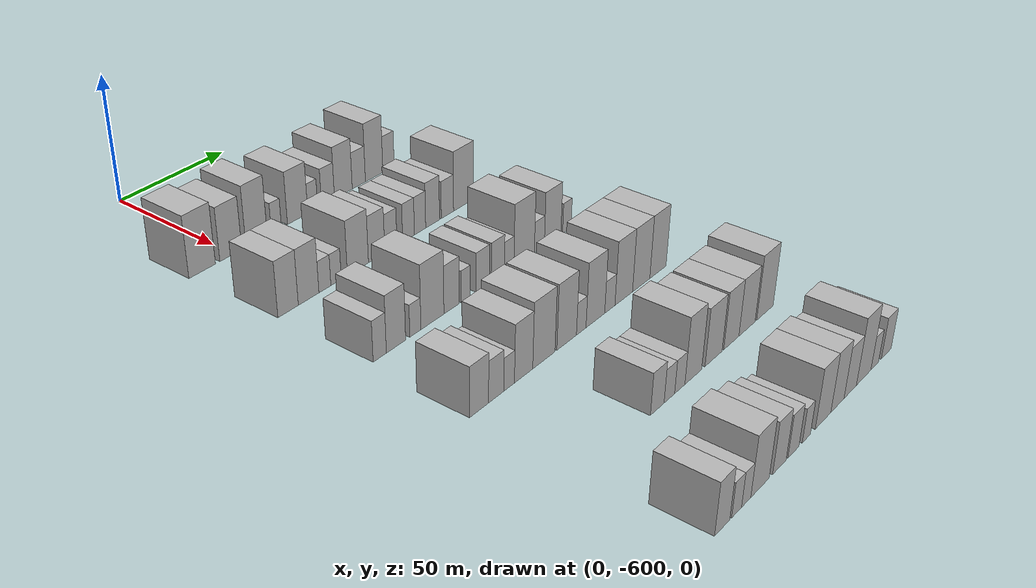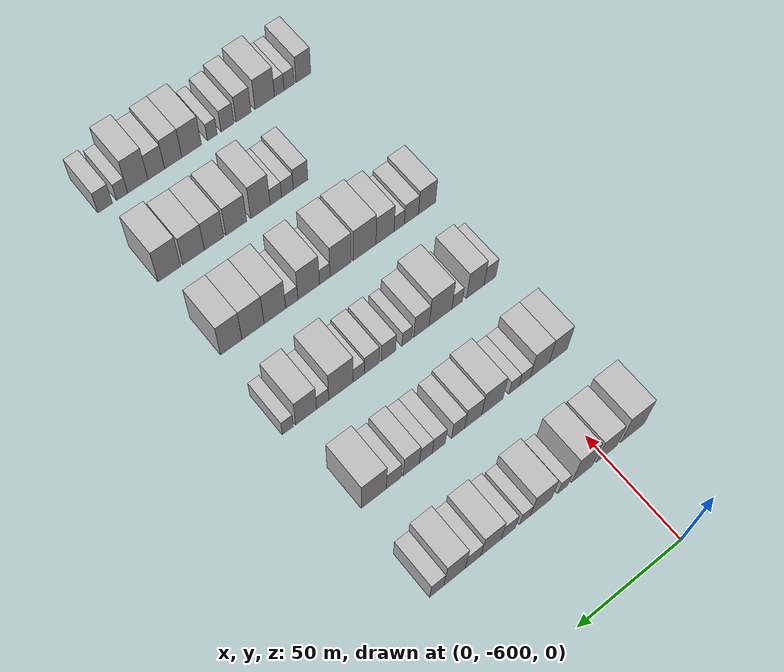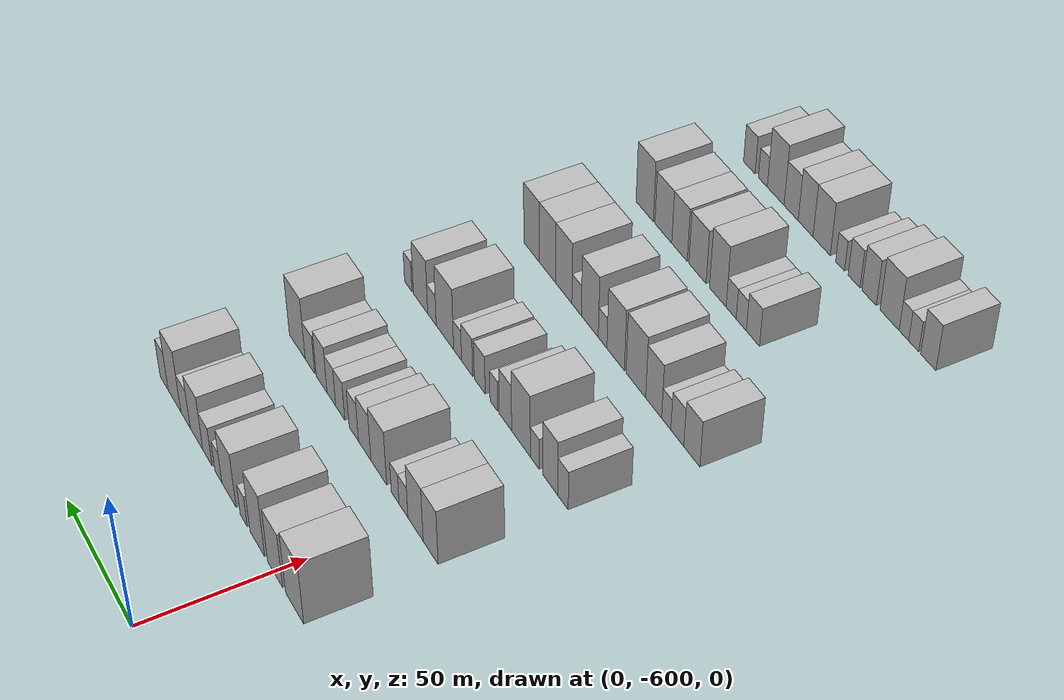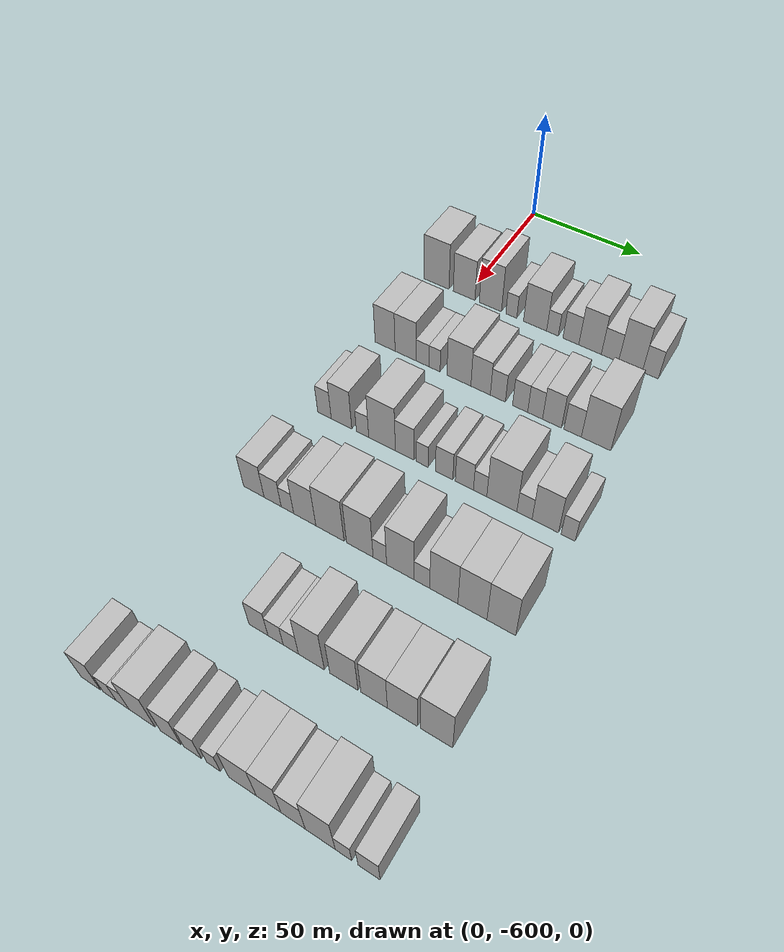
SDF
<sdf version="1.6">
 <world name="default">
  <model name="building_1">
   <static>1</static>
   <pose>50.0000 -614.0647 0 0.000000 0.000000 0.000000</pose>
   <link name="link">
    <pose>0 0 12.00 0 0 0</pose>
    <collision name="collision"><geometry><box><size>20.0000 11.8707 24.0000</size></box></geometry></collision>
    <visual name="visual">
     <cast_shadows>0</cast_shadows>
     <geometry><box><size>20.0000 11.8707 24.0000</size></box></geometry>
     <material>
      <script>
       <uri>model://HANNAS_wall/materials/scripts</uri>
       <uri>model://HANNAS_wall/materials/textures</uri>
       <name>vrc/HANNAS_wall</name>
      </script>
     </material>
    </visual>
   </link>
  </model>
  <model name="building_2">
   <static>1</static>
   <pose>50.0000 -601.0607 0 0.000000 0.000000 0.000000</pose>
   <link name="link">
    <pose>0 0 10.50 0 0 0</pose>
    <collision name="collision"><geometry><box><size>20.0000 10.1372 21.0000</size></box></geometry></collision>
    <visual name="visual">
     <cast_shadows>0</cast_shadows>
     <geometry><box><size>20.0000 10.1372 21.0000</size></box></geometry>
     <material>
      <script>
       <uri>model://HANNAS_wall/materials/scripts</uri>
       <uri>model://HANNAS_wall/materials/textures</uri>
       <name>vrc/HANNAS_wall</name>
      </script>
     </material>
    </visual>
   </link>
  </model>
  <model name="building_3">
   <static>1</static>
   <pose>50.0000 -588.9129 0 0.000000 0.000000 0.000000</pose>
   <link name="link">
    <pose>0 0 12.00 0 0 0</pose>
    <collision name="collision"><geometry><box><size>20.0000 10.1585 24.0000</size></box></geometry></collision>
    <visual name="visual">
     <cast_shadows>0</cast_shadows>
     <geometry><box><size>20.0000 10.1585 24.0000</size></box></geometry>
     <material>
      <script>
       <uri>model://HANNAS_wall/materials/scripts</uri>
       <uri>model://HANNAS_wall/materials/textures</uri>
       <name>vrc/HANNAS_wall</name>
      </script>
     </material>
    </visual>
   </link>
  </model>
  <model name="building_4">
   <static>1</static>
   <pose>50.0000 -579.3778 0 0.000000 0.000000 0.000000</pose>
   <link name="link">
    <pose>0 0 6.00 0 0 0</pose>
    <collision name="collision"><geometry><box><size>20.0000 4.9117 12.0000</size></box></geometry></collision>
    <visual name="visual">
     <cast_shadows>0</cast_shadows>
     <geometry><box><size>20.0000 4.9117 12.0000</size></box></geometry>
     <material>
      <script>
       <uri>model://HANNAS_wall/materials/scripts</uri>
       <uri>model://HANNAS_wall/materials/textures</uri>
       <name>vrc/HANNAS_wall</name>
      </script>
     </material>
    </visual>
   </link>
  </model>
  <model name="building_5">
   <static>1</static>
   <pose>50.0000 -568.7903 0 0.000000 0.000000 0.000000</pose>
   <link name="link">
    <pose>0 0 10.50 0 0 0</pose>
    <collision name="collision"><geometry><box><size>20.0000 10.2632 21.0000</size></box></geometry></collision>
    <visual name="visual">
     <cast_shadows>0</cast_shadows>
     <geometry><box><size>20.0000 10.2632 21.0000</size></box></geometry>
     <material>
      <script>
       <uri>model://HANNAS_wall/materials/scripts</uri>
       <uri>model://HANNAS_wall/materials/textures</uri>
       <name>vrc/HANNAS_wall</name>
      </script>
     </material>
    </visual>
   </link>
  </model>
  <model name="building_6">
   <static>1</static>
   <pose>50.0000 -561.1024 0 0.000000 0.000000 0.000000</pose>
   <link name="link">
    <pose>0 0 6.00 0 0 0</pose>
    <collision name="collision"><geometry><box><size>20.0000 5.1128 12.0000</size></box></geometry></collision>
    <visual name="visual">
     <cast_shadows>0</cast_shadows>
     <geometry><box><size>20.0000 5.1128 12.0000</size></box></geometry>
     <material>
      <script>
       <uri>model://HANNAS_wall/materials/scripts</uri>
       <uri>model://HANNAS_wall/materials/textures</uri>
       <name>vrc/HANNAS_wall</name>
      </script>
     </material>
    </visual>
   </link>
  </model>
  <model name="building_7">
   <static>1</static>
   <pose>50.0000 -553.1415 0 0.000000 0.000000 0.000000</pose>
   <link name="link">
    <pose>0 0 7.50 0 0 0</pose>
    <collision name="collision"><geometry><box><size>20.0000 6.8089 15.0000</size></box></geometry></collision>
    <visual name="visual">
     <cast_shadows>0</cast_shadows>
     <geometry><box><size>20.0000 6.8089 15.0000</size></box></geometry>
     <material>
      <script>
       <uri>model://HANNAS_wall/materials/scripts</uri>
       <uri>model://HANNAS_wall/materials/textures</uri>
       <name>vrc/HANNAS_wall</name>
      </script>
     </material>
    </visual>
   </link>
  </model>
  <model name="building_8">
   <static>1</static>
   <pose>50.0000 -544.9592 0 0.000000 0.000000 0.000000</pose>
   <link name="link">
    <pose>0 0 10.50 0 0 0</pose>
    <collision name="collision"><geometry><box><size>20.0000 9.5557 21.0000</size></box></geometry></collision>
    <visual name="visual">
     <cast_shadows>0</cast_shadows>
     <geometry><box><size>20.0000 9.5557 21.0000</size></box></geometry>
     <material>
      <script>
       <uri>model://HANNAS_wall/materials/scripts</uri>
       <uri>model://HANNAS_wall/materials/textures</uri>
       <name>vrc/HANNAS_wall</name>
      </script>
     </material>
    </visual>
   </link>
  </model>
  <model name="building_9">
   <static>1</static>
   <pose>50.0000 -536.5706 0 0.000000 0.000000 0.000000</pose>
   <link name="link">
    <pose>0 0 7.50 0 0 0</pose>
    <collision name="collision"><geometry><box><size>20.0000 7.2216 15.0000</size></box></geometry></collision>
    <visual name="visual">
     <cast_shadows>0</cast_shadows>
     <geometry><box><size>20.0000 7.2216 15.0000</size></box></geometry>
     <material>
      <script>
       <uri>model://HANNAS_wall/materials/scripts</uri>
       <uri>model://HANNAS_wall/materials/textures</uri>
       <name>vrc/HANNAS_wall</name>
      </script>
     </material>
    </visual>
   </link>
  </model>
  <model name="building_10">
   <static>1</static>
   <pose>50.0000 -528.0604 0 0.000000 0.000000 0.000000</pose>
   <link name="link">
    <pose>0 0 12.00 0 0 0</pose>
    <collision name="collision"><geometry><box><size>20.0000 9.7987 24.0000</size></box></geometry></collision>
    <visual name="visual">
     <cast_shadows>0</cast_shadows>
     <geometry><box><size>20.0000 9.7987 24.0000</size></box></geometry>
     <material>
      <script>
       <uri>model://HANNAS_wall/materials/scripts</uri>
       <uri>model://HANNAS_wall/materials/textures</uri>
       <name>vrc/HANNAS_wall</name>
      </script>
     </material>
    </visual>
   </link>
  </model>
  <model name="building_11">
   <static>1</static>
   <pose>50.0000 -519.9152 0 0.000000 0.000000 0.000000</pose>
   <link name="link">
    <pose>0 0 7.50 0 0 0</pose>
    <collision name="collision"><geometry><box><size>20.0000 6.4918 15.0000</size></box></geometry></collision>
    <visual name="visual">
     <cast_shadows>0</cast_shadows>
     <geometry><box><size>20.0000 6.4918 15.0000</size></box></geometry>
     <material>
      <script>
       <uri>model://HANNAS_wall/materials/scripts</uri>
       <uri>model://HANNAS_wall/materials/textures</uri>
       <name>vrc/HANNAS_wall</name>
      </script>
     </material>
    </visual>
   </link>
  </model>
  <model name="building_131">
   <static>1</static>
   <pose>90.0000 -613.3997 0 0.000000 0.000000 0.000000</pose>
   <link name="link">
    <pose>0 0 10.50 0 0 0</pose>
    <collision name="collision"><geometry><box><size>20.0000 9.2005 21.0000</size></box></geometry></collision>
    <visual name="visual">
     <cast_shadows>0</cast_shadows>
     <geometry><box><size>20.0000 9.2005 21.0000</size></box></geometry>
     <material>
      <script>
       <uri>model://HANNAS_wall/materials/scripts</uri>
       <uri>model://HANNAS_wall/materials/textures</uri>
       <name>vrc/HANNAS_wall</name>
      </script>
     </material>
    </visual>
   </link>
  </model>
  <model name="building_132">
   <static>1</static>
   <pose>90.0000 -604.0309 0 0.000000 0.000000 0.000000</pose>
   <link name="link">
    <pose>0 0 10.50 0 0 0</pose>
    <collision name="collision"><geometry><box><size>20.0000 9.5371 21.0000</size></box></geometry></collision>
    <visual name="visual">
     <cast_shadows>0</cast_shadows>
     <geometry><box><size>20.0000 9.5371 21.0000</size></box></geometry>
     <material>
      <script>
       <uri>model://HANNAS_wall/materials/scripts</uri>
       <uri>model://HANNAS_wall/materials/textures</uri>
       <name>vrc/HANNAS_wall</name>
      </script>
     </material>
    </visual>
   </link>
  </model>
  <model name="building_133">
   <static>1</static>
   <pose>90.0000 -596.4315 0 0.000000 0.000000 0.000000</pose>
   <link name="link">
    <pose>0 0 6.00 0 0 0</pose>
    <collision name="collision"><geometry><box><size>20.0000 5.6618 12.0000</size></box></geometry></collision>
    <visual name="visual">
     <cast_shadows>0</cast_shadows>
     <geometry><box><size>20.0000 5.6618 12.0000</size></box></geometry>
     <material>
      <script>
       <uri>model://HANNAS_wall/materials/scripts</uri>
       <uri>model://HANNAS_wall/materials/textures</uri>
       <name>vrc/HANNAS_wall</name>
      </script>
     </material>
    </visual>
   </link>
  </model>
  <model name="building_134">
   <static>1</static>
   <pose>90.0000 -591.1035 0 0.000000 0.000000 0.000000</pose>
   <link name="link">
    <pose>0 0 6.00 0 0 0</pose>
    <collision name="collision"><geometry><box><size>20.0000 4.9941 12.0000</size></box></geometry></collision>
    <visual name="visual">
     <cast_shadows>0</cast_shadows>
     <geometry><box><size>20.0000 4.9941 12.0000</size></box></geometry>
     <material>
      <script>
       <uri>model://HANNAS_wall/materials/scripts</uri>
       <uri>model://HANNAS_wall/materials/textures</uri>
       <name>vrc/HANNAS_wall</name>
      </script>
     </material>
    </visual>
   </link>
  </model>
  <model name="building_135">
   <static>1</static>
   <pose>90.0000 -580.3953 0 0.000000 0.000000 0.000000</pose>
   <link name="link">
    <pose>0 0 10.50 0 0 0</pose>
    <collision name="collision"><geometry><box><size>20.0000 10.4223 21.0000</size></box></geometry></collision>
    <visual name="visual">
     <cast_shadows>0</cast_shadows>
     <geometry><box><size>20.0000 10.4223 21.0000</size></box></geometry>
     <material>
      <script>
       <uri>model://HANNAS_wall/materials/scripts</uri>
       <uri>model://HANNAS_wall/materials/textures</uri>
       <name>vrc/HANNAS_wall</name>
      </script>
     </material>
    </visual>
   </link>
  </model>
  <model name="building_136">
   <static>1</static>
   <pose>90.0000 -571.0325 0 0.000000 0.000000 0.000000</pose>
   <link name="link">
    <pose>0 0 9.00 0 0 0</pose>
    <collision name="collision"><geometry><box><size>20.0000 8.3033 18.0000</size></box></geometry></collision>
    <visual name="visual">
     <cast_shadows>0</cast_shadows>
     <geometry><box><size>20.0000 8.3033 18.0000</size></box></geometry>
     <material>
      <script>
       <uri>model://HANNAS_wall/materials/scripts</uri>
       <uri>model://HANNAS_wall/materials/textures</uri>
       <name>vrc/HANNAS_wall</name>
      </script>
     </material>
    </visual>
   </link>
  </model>
  <model name="building_137">
   <static>1</static>
   <pose>90.0000 -563.7155 0 0.000000 0.000000 0.000000</pose>
   <link name="link">
    <pose>0 0 7.50 0 0 0</pose>
    <collision name="collision"><geometry><box><size>20.0000 6.3308 15.0000</size></box></geometry></collision>
    <visual name="visual">
     <cast_shadows>0</cast_shadows>
     <geometry><box><size>20.0000 6.3308 15.0000</size></box></geometry>
     <material>
      <script>
       <uri>model://HANNAS_wall/materials/scripts</uri>
       <uri>model://HANNAS_wall/materials/textures</uri>
       <name>vrc/HANNAS_wall</name>
      </script>
     </material>
    </visual>
   </link>
  </model>
  <model name="building_138">
   <static>1</static>
   <pose>90.0000 -554.4207 0 0.000000 0.000000 0.000000</pose>
   <link name="link">
    <pose>0 0 7.50 0 0 0</pose>
    <collision name="collision"><geometry><box><size>20.0000 6.2587 15.0000</size></box></geometry></collision>
    <visual name="visual">
     <cast_shadows>0</cast_shadows>
     <geometry><box><size>20.0000 6.2587 15.0000</size></box></geometry>
     <material>
      <script>
       <uri>model://HANNAS_wall/materials/scripts</uri>
       <uri>model://HANNAS_wall/materials/textures</uri>
       <name>vrc/HANNAS_wall</name>
      </script>
     </material>
    </visual>
   </link>
  </model>
  <model name="building_139">
   <static>1</static>
   <pose>90.0000 -548.2397 0 0.000000 0.000000 0.000000</pose>
   <link name="link">
    <pose>0 0 7.50 0 0 0</pose>
    <collision name="collision"><geometry><box><size>20.0000 6.1033 15.0000</size></box></geometry></collision>
    <visual name="visual">
     <cast_shadows>0</cast_shadows>
     <geometry><box><size>20.0000 6.1033 15.0000</size></box></geometry>
     <material>
      <script>
       <uri>model://HANNAS_wall/materials/scripts</uri>
       <uri>model://HANNAS_wall/materials/textures</uri>
       <name>vrc/HANNAS_wall</name>
      </script>
     </material>
    </visual>
   </link>
  </model>
  <model name="building_140">
   <static>1</static>
   <pose>90.0000 -541.3703 0 0.000000 0.000000 0.000000</pose>
   <link name="link">
    <pose>0 0 9.00 0 0 0</pose>
    <collision name="collision"><geometry><box><size>20.0000 7.6355 18.0000</size></box></geometry></collision>
    <visual name="visual">
     <cast_shadows>0</cast_shadows>
     <geometry><box><size>20.0000 7.6355 18.0000</size></box></geometry>
     <material>
      <script>
       <uri>model://HANNAS_wall/materials/scripts</uri>
       <uri>model://HANNAS_wall/materials/textures</uri>
       <name>vrc/HANNAS_wall</name>
      </script>
     </material>
    </visual>
   </link>
  </model>
  <model name="building_141">
   <static>1</static>
   <pose>90.0000 -533.0863 0 0.000000 0.000000 0.000000</pose>
   <link name="link">
    <pose>0 0 7.50 0 0 0</pose>
    <collision name="collision"><geometry><box><size>20.0000 6.9325 15.0000</size></box></geometry></collision>
    <visual name="visual">
     <cast_shadows>0</cast_shadows>
     <geometry><box><size>20.0000 6.9325 15.0000</size></box></geometry>
     <material>
      <script>
       <uri>model://HANNAS_wall/materials/scripts</uri>
       <uri>model://HANNAS_wall/materials/textures</uri>
       <name>vrc/HANNAS_wall</name>
      </script>
     </material>
    </visual>
   </link>
  </model>
  <model name="building_142">
   <static>1</static>
   <pose>90.0000 -523.8484 0 0.000000 0.000000 0.000000</pose>
   <link name="link">
    <pose>0 0 12.00 0 0 0</pose>
    <collision name="collision"><geometry><box><size>20.0000 11.5434 24.0000</size></box></geometry></collision>
    <visual name="visual">
     <cast_shadows>0</cast_shadows>
     <geometry><box><size>20.0000 11.5434 24.0000</size></box></geometry>
     <material>
      <script>
       <uri>model://HANNAS_wall/materials/scripts</uri>
       <uri>model://HANNAS_wall/materials/textures</uri>
       <name>vrc/HANNAS_wall</name>
      </script>
     </material>
    </visual>
   </link>
  </model>
  <model name="building_269">
   <static>1</static>
   <pose>130.0000 -613.9835 0 0.000000 0.000000 0.000000</pose>
   <link name="link">
    <pose>0 0 7.50 0 0 0</pose>
    <collision name="collision"><geometry><box><size>20.0000 6.0331 15.0000</size></box></geometry></collision>
    <visual name="visual">
     <cast_shadows>0</cast_shadows>
     <geometry><box><size>20.0000 6.0331 15.0000</size></box></geometry>
     <material>
      <script>
       <uri>model://HANNAS_wall/materials/scripts</uri>
       <uri>model://HANNAS_wall/materials/textures</uri>
       <name>vrc/HANNAS_wall</name>
      </script>
     </material>
    </visual>
   </link>
  </model>
  <model name="building_270">
   <static>1</static>
   <pose>130.0000 -606.4680 0 0.000000 0.000000 0.000000</pose>
   <link name="link">
    <pose>0 0 10.50 0 0 0</pose>
    <collision name="collision"><geometry><box><size>20.0000 8.9979 21.0000</size></box></geometry></collision>
    <visual name="visual">
     <cast_shadows>0</cast_shadows>
     <geometry><box><size>20.0000 8.9979 21.0000</size></box></geometry>
     <material>
      <script>
       <uri>model://HANNAS_wall/materials/scripts</uri>
       <uri>model://HANNAS_wall/materials/textures</uri>
       <name>vrc/HANNAS_wall</name>
      </script>
     </material>
    </visual>
   </link>
  </model>
  <model name="building_271">
   <static>1</static>
   <pose>130.0000 -597.3083 0 0.000000 0.000000 0.000000</pose>
   <link name="link">
    <pose>0 0 6.00 0 0 0</pose>
    <collision name="collision"><geometry><box><size>20.0000 5.3214 12.0000</size></box></geometry></collision>
    <visual name="visual">
     <cast_shadows>0</cast_shadows>
     <geometry><box><size>20.0000 5.3214 12.0000</size></box></geometry>
     <material>
      <script>
       <uri>model://HANNAS_wall/materials/scripts</uri>
       <uri>model://HANNAS_wall/materials/textures</uri>
       <name>vrc/HANNAS_wall</name>
      </script>
     </material>
    </visual>
   </link>
  </model>
  <model name="building_272">
   <static>1</static>
   <pose>130.0000 -588.9761 0 0.000000 0.000000 0.000000</pose>
   <link name="link">
    <pose>0 0 12.00 0 0 0</pose>
    <collision name="collision"><geometry><box><size>20.0000 11.3430 24.0000</size></box></geometry></collision>
    <visual name="visual">
     <cast_shadows>0</cast_shadows>
     <geometry><box><size>20.0000 11.3430 24.0000</size></box></geometry>
     <material>
      <script>
       <uri>model://HANNAS_wall/materials/scripts</uri>
       <uri>model://HANNAS_wall/materials/textures</uri>
       <name>vrc/HANNAS_wall</name>
      </script>
     </material>
    </visual>
   </link>
  </model>
  <model name="building_273">
   <static>1</static>
   <pose>130.0000 -579.4441 0 0.000000 0.000000 0.000000</pose>
   <link name="link">
    <pose>0 0 9.00 0 0 0</pose>
    <collision name="collision"><geometry><box><size>20.0000 7.7209 18.0000</size></box></geometry></collision>
    <visual name="visual">
     <cast_shadows>0</cast_shadows>
     <geometry><box><size>20.0000 7.7209 18.0000</size></box></geometry>
     <material>
      <script>
       <uri>model://HANNAS_wall/materials/scripts</uri>
       <uri>model://HANNAS_wall/materials/textures</uri>
       <name>vrc/HANNAS_wall</name>
      </script>
     </material>
    </visual>
   </link>
  </model>
  <model name="building_274">
   <static>1</static>
   <pose>130.0000 -572.1626 0 0.000000 0.000000 0.000000</pose>
   <link name="link">
    <pose>0 0 6.00 0 0 0</pose>
    <collision name="collision"><geometry><box><size>20.0000 4.8422 12.0000</size></box></geometry></collision>
    <visual name="visual">
     <cast_shadows>0</cast_shadows>
     <geometry><box><size>20.0000 4.8422 12.0000</size></box></geometry>
     <material>
      <script>
       <uri>model://HANNAS_wall/materials/scripts</uri>
       <uri>model://HANNAS_wall/materials/textures</uri>
       <name>vrc/HANNAS_wall</name>
      </script>
     </material>
    </visual>
   </link>
  </model>
  <model name="building_275">
   <static>1</static>
   <pose>130.0000 -563.2270 0 0.000000 0.000000 0.000000</pose>
   <link name="link">
    <pose>0 0 7.50 0 0 0</pose>
    <collision name="collision"><geometry><box><size>20.0000 7.0288 15.0000</size></box></geometry></collision>
    <visual name="visual">
     <cast_shadows>0</cast_shadows>
     <geometry><box><size>20.0000 7.0288 15.0000</size></box></geometry>
     <material>
      <script>
       <uri>model://HANNAS_wall/materials/scripts</uri>
       <uri>model://HANNAS_wall/materials/textures</uri>
       <name>vrc/HANNAS_wall</name>
      </script>
     </material>
    </visual>
   </link>
  </model>
  <model name="building_276">
   <static>1</static>
   <pose>130.0000 -555.1033 0 0.000000 0.000000 0.000000</pose>
   <link name="link">
    <pose>0 0 7.50 0 0 0</pose>
    <collision name="collision"><geometry><box><size>20.0000 7.2187 15.0000</size></box></geometry></collision>
    <visual name="visual">
     <cast_shadows>0</cast_shadows>
     <geometry><box><size>20.0000 7.2187 15.0000</size></box></geometry>
     <material>
      <script>
       <uri>model://HANNAS_wall/materials/scripts</uri>
       <uri>model://HANNAS_wall/materials/textures</uri>
       <name>vrc/HANNAS_wall</name>
      </script>
     </material>
    </visual>
   </link>
  </model>
  <model name="building_277">
   <static>1</static>
   <pose>130.0000 -548.8752 0 0.000000 0.000000 0.000000</pose>
   <link name="link">
    <pose>0 0 6.00 0 0 0</pose>
    <collision name="collision"><geometry><box><size>20.0000 5.2375 12.0000</size></box></geometry></collision>
    <visual name="visual">
     <cast_shadows>0</cast_shadows>
     <geometry><box><size>20.0000 5.2375 12.0000</size></box></geometry>
     <material>
      <script>
       <uri>model://HANNAS_wall/materials/scripts</uri>
       <uri>model://HANNAS_wall/materials/textures</uri>
       <name>vrc/HANNAS_wall</name>
      </script>
     </material>
    </visual>
   </link>
  </model>
  <model name="building_278">
   <static>1</static>
   <pose>130.0000 -540.4434 0 0.000000 0.000000 0.000000</pose>
   <link name="link">
    <pose>0 0 12.00 0 0 0</pose>
    <collision name="collision"><geometry><box><size>20.0000 11.6261 24.0000</size></box></geometry></collision>
    <visual name="visual">
     <cast_shadows>0</cast_shadows>
     <geometry><box><size>20.0000 11.6261 24.0000</size></box></geometry>
     <material>
      <script>
       <uri>model://HANNAS_wall/materials/scripts</uri>
       <uri>model://HANNAS_wall/materials/textures</uri>
       <name>vrc/HANNAS_wall</name>
      </script>
     </material>
    </visual>
   </link>
  </model>
  <model name="building_279">
   <static>1</static>
   <pose>130.0000 -531.7332 0 0.000000 0.000000 0.000000</pose>
   <link name="link">
    <pose>0 0 6.00 0 0 0</pose>
    <collision name="collision"><geometry><box><size>20.0000 5.7943 12.0000</size></box></geometry></collision>
    <visual name="visual">
     <cast_shadows>0</cast_shadows>
     <geometry><box><size>20.0000 5.7943 12.0000</size></box></geometry>
     <material>
      <script>
       <uri>model://HANNAS_wall/materials/scripts</uri>
       <uri>model://HANNAS_wall/materials/textures</uri>
       <name>vrc/HANNAS_wall</name>
      </script>
     </material>
    </visual>
   </link>
  </model>
  <model name="building_280">
   <static>1</static>
   <pose>130.0000 -523.9139 0 0.000000 0.000000 0.000000</pose>
   <link name="link">
    <pose>0 0 10.50 0 0 0</pose>
    <collision name="collision"><geometry><box><size>20.0000 9.8442 21.0000</size></box></geometry></collision>
    <visual name="visual">
     <cast_shadows>0</cast_shadows>
     <geometry><box><size>20.0000 9.8442 21.0000</size></box></geometry>
     <material>
      <script>
       <uri>model://HANNAS_wall/materials/scripts</uri>
       <uri>model://HANNAS_wall/materials/textures</uri>
       <name>vrc/HANNAS_wall</name>
      </script>
     </material>
    </visual>
   </link>
  </model>
  <model name="building_281">
   <static>1</static>
   <pose>130.0000 -515.4103 0 0.000000 0.000000 0.000000</pose>
   <link name="link">
    <pose>0 0 6.00 0 0 0</pose>
    <collision name="collision"><geometry><box><size>20.0000 5.1631 12.0000</size></box></geometry></collision>
    <visual name="visual">
     <cast_shadows>0</cast_shadows>
     <geometry><box><size>20.0000 5.1631 12.0000</size></box></geometry>
     <material>
      <script>
       <uri>model://HANNAS_wall/materials/scripts</uri>
       <uri>model://HANNAS_wall/materials/textures</uri>
       <name>vrc/HANNAS_wall</name>
      </script>
     </material>
    </visual>
   </link>
  </model>
  <model name="building_409">
   <static>1</static>
   <pose>170.0000 -615.5773 0 0.000000 0.000000 0.000000</pose>
   <link name="link">
    <pose>0 0 9.00 0 0 0</pose>
    <collision name="collision"><geometry><box><size>20.0000 8.8454 18.0000</size></box></geometry></collision>
    <visual name="visual">
     <cast_shadows>0</cast_shadows>
     <geometry><box><size>20.0000 8.8454 18.0000</size></box></geometry>
     <material>
      <script>
       <uri>model://HANNAS_wall/materials/scripts</uri>
       <uri>model://HANNAS_wall/materials/textures</uri>
       <name>vrc/HANNAS_wall</name>
      </script>
     </material>
    </visual>
   </link>
  </model>
  <model name="building_410">
   <static>1</static>
   <pose>170.0000 -607.5293 0 0.000000 0.000000 0.000000</pose>
   <link name="link">
    <pose>0 0 7.50 0 0 0</pose>
    <collision name="collision"><geometry><box><size>20.0000 7.2507 15.0000</size></box></geometry></collision>
    <visual name="visual">
     <cast_shadows>0</cast_shadows>
     <geometry><box><size>20.0000 7.2507 15.0000</size></box></geometry>
     <material>
      <script>
       <uri>model://HANNAS_wall/materials/scripts</uri>
       <uri>model://HANNAS_wall/materials/textures</uri>
       <name>vrc/HANNAS_wall</name>
      </script>
     </material>
    </visual>
   </link>
  </model>
  <model name="building_411">
   <static>1</static>
   <pose>170.0000 -601.2851 0 0.000000 0.000000 0.000000</pose>
   <link name="link">
    <pose>0 0 6.00 0 0 0</pose>
    <collision name="collision"><geometry><box><size>20.0000 5.2377 12.0000</size></box></geometry></collision>
    <visual name="visual">
     <cast_shadows>0</cast_shadows>
     <geometry><box><size>20.0000 5.2377 12.0000</size></box></geometry>
     <material>
      <script>
       <uri>model://HANNAS_wall/materials/scripts</uri>
       <uri>model://HANNAS_wall/materials/textures</uri>
       <name>vrc/HANNAS_wall</name>
      </script>
     </material>
    </visual>
   </link>
  </model>
  <model name="building_412">
   <static>1</static>
   <pose>170.0000 -594.0950 0 0.000000 0.000000 0.000000</pose>
   <link name="link">
    <pose>0 0 10.50 0 0 0</pose>
    <collision name="collision"><geometry><box><size>20.0000 9.1425 21.0000</size></box></geometry></collision>
    <visual name="visual">
     <cast_shadows>0</cast_shadows>
     <geometry><box><size>20.0000 9.1425 21.0000</size></box></geometry>
     <material>
      <script>
       <uri>model://HANNAS_wall/materials/scripts</uri>
       <uri>model://HANNAS_wall/materials/textures</uri>
       <name>vrc/HANNAS_wall</name>
      </script>
     </material>
    </visual>
   </link>
  </model>
  <model name="building_413">
   <static>1</static>
   <pose>170.0000 -583.7956 0 0.000000 0.000000 0.000000</pose>
   <link name="link">
    <pose>0 0 12.00 0 0 0</pose>
    <collision name="collision"><geometry><box><size>20.0000 11.4564 24.0000</size></box></geometry></collision>
    <visual name="visual">
     <cast_shadows>0</cast_shadows>
     <geometry><box><size>20.0000 11.4564 24.0000</size></box></geometry>
     <material>
      <script>
       <uri>model://HANNAS_wall/materials/scripts</uri>
       <uri>model://HANNAS_wall/materials/textures</uri>
       <name>vrc/HANNAS_wall</name>
      </script>
     </material>
    </visual>
   </link>
  </model>
  <model name="building_414">
   <static>1</static>
   <pose>170.0000 -571.8328 0 0.000000 0.000000 0.000000</pose>
   <link name="link">
    <pose>0 0 12.00 0 0 0</pose>
    <collision name="collision"><geometry><box><size>20.0000 10.4691 24.0000</size></box></geometry></collision>
    <visual name="visual">
     <cast_shadows>0</cast_shadows>
     <geometry><box><size>20.0000 10.4691 24.0000</size></box></geometry>
     <material>
      <script>
       <uri>model://HANNAS_wall/materials/scripts</uri>
       <uri>model://HANNAS_wall/materials/textures</uri>
       <name>vrc/HANNAS_wall</name>
      </script>
     </material>
    </visual>
   </link>
  </model>
  <model name="building_415">
   <static>1</static>
   <pose>170.0000 -563.9743 0 0.000000 0.000000 0.000000</pose>
   <link name="link">
    <pose>0 0 6.00 0 0 0</pose>
    <collision name="collision"><geometry><box><size>20.0000 5.2481 12.0000</size></box></geometry></collision>
    <visual name="visual">
     <cast_shadows>0</cast_shadows>
     <geometry><box><size>20.0000 5.2481 12.0000</size></box></geometry>
     <material>
      <script>
       <uri>model://HANNAS_wall/materials/scripts</uri>
       <uri>model://HANNAS_wall/materials/textures</uri>
       <name>vrc/HANNAS_wall</name>
      </script>
     </material>
    </visual>
   </link>
  </model>
  <model name="building_416">
   <static>1</static>
   <pose>170.0000 -556.1006 0 0.000000 0.000000 0.000000</pose>
   <link name="link">
    <pose>0 0 12.00 0 0 0</pose>
    <collision name="collision"><geometry><box><size>20.0000 10.4992 24.0000</size></box></geometry></collision>
    <visual name="visual">
     <cast_shadows>0</cast_shadows>
     <geometry><box><size>20.0000 10.4992 24.0000</size></box></geometry>
     <material>
      <script>
       <uri>model://HANNAS_wall/materials/scripts</uri>
       <uri>model://HANNAS_wall/materials/textures</uri>
       <name>vrc/HANNAS_wall</name>
      </script>
     </material>
    </visual>
   </link>
  </model>
  <model name="building_417">
   <static>1</static>
   <pose>170.0000 -547.8974 0 0.000000 0.000000 0.000000</pose>
   <link name="link">
    <pose>0 0 6.00 0 0 0</pose>
    <collision name="collision"><geometry><box><size>20.0000 5.9073 12.0000</size></box></geometry></collision>
    <visual name="visual">
     <cast_shadows>0</cast_shadows>
     <geometry><box><size>20.0000 5.9073 12.0000</size></box></geometry>
     <material>
      <script>
       <uri>model://HANNAS_wall/materials/scripts</uri>
       <uri>model://HANNAS_wall/materials/textures</uri>
       <name>vrc/HANNAS_wall</name>
      </script>
     </material>
    </visual>
   </link>
  </model>
  <model name="building_418">
   <static>1</static>
   <pose>170.0000 -539.7551 0 0.000000 0.000000 0.000000</pose>
   <link name="link">
    <pose>0 0 12.00 0 0 0</pose>
    <collision name="collision"><geometry><box><size>20.0000 10.3773 24.0000</size></box></geometry></collision>
    <visual name="visual">
     <cast_shadows>0</cast_shadows>
     <geometry><box><size>20.0000 10.3773 24.0000</size></box></geometry>
     <material>
      <script>
       <uri>model://HANNAS_wall/materials/scripts</uri>
       <uri>model://HANNAS_wall/materials/textures</uri>
       <name>vrc/HANNAS_wall</name>
      </script>
     </material>
    </visual>
   </link>
  </model>
  <model name="building_419">
   <static>1</static>
   <pose>170.0000 -529.3177 0 0.000000 0.000000 0.000000</pose>
   <link name="link">
    <pose>0 0 12.00 0 0 0</pose>
    <collision name="collision"><geometry><box><size>20.0000 10.4975 24.0000</size></box></geometry></collision>
    <visual name="visual">
     <cast_shadows>0</cast_shadows>
     <geometry><box><size>20.0000 10.4975 24.0000</size></box></geometry>
     <material>
      <script>
       <uri>model://HANNAS_wall/materials/scripts</uri>
       <uri>model://HANNAS_wall/materials/textures</uri>
       <name>vrc/HANNAS_wall</name>
      </script>
     </material>
    </visual>
   </link>
  </model>
  <model name="building_420">
   <static>1</static>
   <pose>170.0000 -518.9870 0 0.000000 0.000000 0.000000</pose>
   <link name="link">
    <pose>0 0 12.00 0 0 0</pose>
    <collision name="collision"><geometry><box><size>20.0000 10.1640 24.0000</size></box></geometry></collision>
    <visual name="visual">
     <cast_shadows>0</cast_shadows>
     <geometry><box><size>20.0000 10.1640 24.0000</size></box></geometry>
     <material>
      <script>
       <uri>model://HANNAS_wall/materials/scripts</uri>
       <uri>model://HANNAS_wall/materials/textures</uri>
       <name>vrc/HANNAS_wall</name>
      </script>
     </material>
    </visual>
   </link>
  </model>
  <model name="building_549">
   <static>1</static>
   <pose>210.0000 -582.9353 0 0.000000 0.000000 0.000000</pose>
   <link name="link">
    <pose>0 0 7.50 0 0 0</pose>
    <collision name="collision"><geometry><box><size>20.0000 7.3765 15.0000</size></box></geometry></collision>
    <visual name="visual">
     <cast_shadows>0</cast_shadows>
     <geometry><box><size>20.0000 7.3765 15.0000</size></box></geometry>
     <material>
      <script>
       <uri>model://HANNAS_wall/materials/scripts</uri>
       <uri>model://HANNAS_wall/materials/textures</uri>
       <name>vrc/HANNAS_wall</name>
      </script>
     </material>
    </visual>
   </link>
  </model>
  <model name="building_550">
   <static>1</static>
   <pose>210.0000 -576.3352 0 0.000000 0.000000 0.000000</pose>
   <link name="link">
    <pose>0 0 6.00 0 0 0</pose>
    <collision name="collision"><geometry><box><size>20.0000 5.8237 12.0000</size></box></geometry></collision>
    <visual name="visual">
     <cast_shadows>0</cast_shadows>
     <geometry><box><size>20.0000 5.8237 12.0000</size></box></geometry>
     <material>
      <script>
       <uri>model://HANNAS_wall/materials/scripts</uri>
       <uri>model://HANNAS_wall/materials/textures</uri>
       <name>vrc/HANNAS_wall</name>
      </script>
     </material>
    </visual>
   </link>
  </model>
  <model name="building_551">
   <static>1</static>
   <pose>210.0000 -570.5397 0 0.000000 0.000000 0.000000</pose>
   <link name="link">
    <pose>0 0 6.00 0 0 0</pose>
    <collision name="collision"><geometry><box><size>20.0000 5.7673 12.0000</size></box></geometry></collision>
    <visual name="visual">
     <cast_shadows>0</cast_shadows>
     <geometry><box><size>20.0000 5.7673 12.0000</size></box></geometry>
     <material>
      <script>
       <uri>model://HANNAS_wall/materials/scripts</uri>
       <uri>model://HANNAS_wall/materials/textures</uri>
       <name>vrc/HANNAS_wall</name>
      </script>
     </material>
    </visual>
   </link>
  </model>
  <model name="building_552">
   <static>1</static>
   <pose>210.0000 -562.8328 0 0.000000 0.000000 0.000000</pose>
   <link name="link">
    <pose>0 0 12.00 0 0 0</pose>
    <collision name="collision"><geometry><box><size>20.0000 9.6465 24.0000</size></box></geometry></collision>
    <visual name="visual">
     <cast_shadows>0</cast_shadows>
     <geometry><box><size>20.0000 9.6465 24.0000</size></box></geometry>
     <material>
      <script>
       <uri>model://HANNAS_wall/materials/scripts</uri>
       <uri>model://HANNAS_wall/materials/textures</uri>
       <name>vrc/HANNAS_wall</name>
      </script>
     </material>
    </visual>
   </link>
  </model>
  <model name="building_553">
   <static>1</static>
   <pose>210.0000 -550.8886 0 0.000000 0.000000 0.000000</pose>
   <link name="link">
    <pose>0 0 10.50 0 0 0</pose>
    <collision name="collision"><geometry><box><size>20.0000 10.2419 21.0000</size></box></geometry></collision>
    <visual name="visual">
     <cast_shadows>0</cast_shadows>
     <geometry><box><size>20.0000 10.2419 21.0000</size></box></geometry>
     <material>
      <script>
       <uri>model://HANNAS_wall/materials/scripts</uri>
       <uri>model://HANNAS_wall/materials/textures</uri>
       <name>vrc/HANNAS_wall</name>
      </script>
     </material>
    </visual>
   </link>
  </model>
  <model name="building_554">
   <static>1</static>
   <pose>210.0000 -540.0779 0 0.000000 0.000000 0.000000</pose>
   <link name="link">
    <pose>0 0 10.50 0 0 0</pose>
    <collision name="collision"><geometry><box><size>20.0000 9.3793 21.0000</size></box></geometry></collision>
    <visual name="visual">
     <cast_shadows>0</cast_shadows>
     <geometry><box><size>20.0000 9.3793 21.0000</size></box></geometry>
     <material>
      <script>
       <uri>model://HANNAS_wall/materials/scripts</uri>
       <uri>model://HANNAS_wall/materials/textures</uri>
       <name>vrc/HANNAS_wall</name>
      </script>
     </material>
    </visual>
   </link>
  </model>
  <model name="building_555">
   <static>1</static>
   <pose>210.0000 -530.2033 0 0.000000 0.000000 0.000000</pose>
   <link name="link">
    <pose>0 0 10.50 0 0 0</pose>
    <collision name="collision"><geometry><box><size>20.0000 10.3700 21.0000</size></box></geometry></collision>
    <visual name="visual">
     <cast_shadows>0</cast_shadows>
     <geometry><box><size>20.0000 10.3700 21.0000</size></box></geometry>
     <material>
      <script>
       <uri>model://HANNAS_wall/materials/scripts</uri>
       <uri>model://HANNAS_wall/materials/textures</uri>
       <name>vrc/HANNAS_wall</name>
      </script>
     </material>
    </visual>
   </link>
  </model>
  <model name="building_556">
   <static>1</static>
   <pose>210.0000 -518.5811 0 0.000000 0.000000 0.000000</pose>
   <link name="link">
    <pose>0 0 12.00 0 0 0</pose>
    <collision name="collision"><geometry><box><size>20.0000 10.8743 24.0000</size></box></geometry></collision>
    <visual name="visual">
     <cast_shadows>0</cast_shadows>
     <geometry><box><size>20.0000 10.8743 24.0000</size></box></geometry>
     <material>
      <script>
       <uri>model://HANNAS_wall/materials/scripts</uri>
       <uri>model://HANNAS_wall/materials/textures</uri>
       <name>vrc/HANNAS_wall</name>
      </script>
     </material>
    </visual>
   </link>
  </model>
  <model name="building_691">
   <static>1</static>
   <pose>250.0000 -615.1132 0 0.000000 0.000000 0.000000</pose>
   <link name="link">
    <pose>0 0 9.00 0 0 0</pose>
    <collision name="collision"><geometry><box><size>20.0000 7.7737 18.0000</size></box></geometry></collision>
    <visual name="visual">
     <cast_shadows>0</cast_shadows>
     <geometry><box><size>20.0000 7.7737 18.0000</size></box></geometry>
     <material>
      <script>
       <uri>model://HANNAS_wall/materials/scripts</uri>
       <uri>model://HANNAS_wall/materials/textures</uri>
       <name>vrc/HANNAS_wall</name>
      </script>
     </material>
    </visual>
   </link>
  </model>
  <model name="building_692">
   <static>1</static>
   <pose>250.0000 -607.6215 0 0.000000 0.000000 0.000000</pose>
   <link name="link">
    <pose>0 0 6.00 0 0 0</pose>
    <collision name="collision"><geometry><box><size>20.0000 5.2096 12.0000</size></box></geometry></collision>
    <visual name="visual">
     <cast_shadows>0</cast_shadows>
     <geometry><box><size>20.0000 5.2096 12.0000</size></box></geometry>
     <material>
      <script>
       <uri>model://HANNAS_wall/materials/scripts</uri>
       <uri>model://HANNAS_wall/materials/textures</uri>
       <name>vrc/HANNAS_wall</name>
      </script>
     </material>
    </visual>
   </link>
  </model>
  <model name="building_693">
   <static>1</static>
   <pose>250.0000 -602.5430 0 0.000000 0.000000 0.000000</pose>
   <link name="link">
    <pose>0 0 6.00 0 0 0</pose>
    <collision name="collision"><geometry><box><size>20.0000 4.9475 12.0000</size></box></geometry></collision>
    <visual name="visual">
     <cast_shadows>0</cast_shadows>
     <geometry><box><size>20.0000 4.9475 12.0000</size></box></geometry>
     <material>
      <script>
       <uri>model://HANNAS_wall/materials/scripts</uri>
       <uri>model://HANNAS_wall/materials/textures</uri>
       <name>vrc/HANNAS_wall</name>
      </script>
     </material>
    </visual>
   </link>
  </model>
  <model name="building_694">
   <static>1</static>
   <pose>250.0000 -595.0077 0 0.000000 0.000000 0.000000</pose>
   <link name="link">
    <pose>0 0 10.50 0 0 0</pose>
    <collision name="collision"><geometry><box><size>20.0000 10.1232 21.0000</size></box></geometry></collision>
    <visual name="visual">
     <cast_shadows>0</cast_shadows>
     <geometry><box><size>20.0000 10.1232 21.0000</size></box></geometry>
     <material>
      <script>
       <uri>model://HANNAS_wall/materials/scripts</uri>
       <uri>model://HANNAS_wall/materials/textures</uri>
       <name>vrc/HANNAS_wall</name>
      </script>
     </material>
    </visual>
   </link>
  </model>
  <model name="building_695">
   <static>1</static>
   <pose>250.0000 -584.0757 0 0.000000 0.000000 0.000000</pose>
   <link name="link">
    <pose>0 0 9.00 0 0 0</pose>
    <collision name="collision"><geometry><box><size>20.0000 7.7407 18.0000</size></box></geometry></collision>
    <visual name="visual">
     <cast_shadows>0</cast_shadows>
     <geometry><box><size>20.0000 7.7407 18.0000</size></box></geometry>
     <material>
      <script>
       <uri>model://HANNAS_wall/materials/scripts</uri>
       <uri>model://HANNAS_wall/materials/textures</uri>
       <name>vrc/HANNAS_wall</name>
      </script>
     </material>
    </visual>
   </link>
  </model>
  <model name="building_696">
   <static>1</static>
   <pose>250.0000 -575.9482 0 0.000000 0.000000 0.000000</pose>
   <link name="link">
    <pose>0 0 7.50 0 0 0</pose>
    <collision name="collision"><geometry><box><size>20.0000 6.5144 15.0000</size></box></geometry></collision>
    <visual name="visual">
     <cast_shadows>0</cast_shadows>
     <geometry><box><size>20.0000 6.5144 15.0000</size></box></geometry>
     <material>
      <script>
       <uri>model://HANNAS_wall/materials/scripts</uri>
       <uri>model://HANNAS_wall/materials/textures</uri>
       <name>vrc/HANNAS_wall</name>
      </script>
     </material>
    </visual>
   </link>
  </model>
  <model name="building_697">
   <static>1</static>
   <pose>250.0000 -568.2311 0 0.000000 0.000000 0.000000</pose>
   <link name="link">
    <pose>0 0 6.00 0 0 0</pose>
    <collision name="collision"><geometry><box><size>20.0000 4.9198 12.0000</size></box></geometry></collision>
    <visual name="visual">
     <cast_shadows>0</cast_shadows>
     <geometry><box><size>20.0000 4.9198 12.0000</size></box></geometry>
     <material>
      <script>
       <uri>model://HANNAS_wall/materials/scripts</uri>
       <uri>model://HANNAS_wall/materials/textures</uri>
       <name>vrc/HANNAS_wall</name>
      </script>
     </material>
    </visual>
   </link>
  </model>
  <model name="building_698">
   <static>1</static>
   <pose>250.0000 -557.8956 0 0.000000 0.000000 0.000000</pose>
   <link name="link">
    <pose>0 0 10.50 0 0 0</pose>
    <collision name="collision"><geometry><box><size>20.0000 9.7512 21.0000</size></box></geometry></collision>
    <visual name="visual">
     <cast_shadows>0</cast_shadows>
     <geometry><box><size>20.0000 9.7512 21.0000</size></box></geometry>
     <material>
      <script>
       <uri>model://HANNAS_wall/materials/scripts</uri>
       <uri>model://HANNAS_wall/materials/textures</uri>
       <name>vrc/HANNAS_wall</name>
      </script>
     </material>
    </visual>
   </link>
  </model>
  <model name="building_699">
   <static>1</static>
   <pose>250.0000 -548.7596 0 0.000000 0.000000 0.000000</pose>
   <link name="link">
    <pose>0 0 10.50 0 0 0</pose>
    <collision name="collision"><geometry><box><size>20.0000 8.5208 21.0000</size></box></geometry></collision>
    <visual name="visual">
     <cast_shadows>0</cast_shadows>
     <geometry><box><size>20.0000 8.5208 21.0000</size></box></geometry>
     <material>
      <script>
       <uri>model://HANNAS_wall/materials/scripts</uri>
       <uri>model://HANNAS_wall/materials/textures</uri>
       <name>vrc/HANNAS_wall</name>
      </script>
     </material>
    </visual>
   </link>
  </model>
  <model name="building_700">
   <static>1</static>
   <pose>250.0000 -540.3964 0 0.000000 0.000000 0.000000</pose>
   <link name="link">
    <pose>0 0 9.00 0 0 0</pose>
    <collision name="collision"><geometry><box><size>20.0000 8.2058 18.0000</size></box></geometry></collision>
    <visual name="visual">
     <cast_shadows>0</cast_shadows>
     <geometry><box><size>20.0000 8.2058 18.0000</size></box></geometry>
     <material>
      <script>
       <uri>model://HANNAS_wall/materials/scripts</uri>
       <uri>model://HANNAS_wall/materials/textures</uri>
       <name>vrc/HANNAS_wall</name>
      </script>
     </material>
    </visual>
   </link>
  </model>
  <model name="building_701">
   <static>1</static>
   <pose>250.0000 -531.3407 0 0.000000 0.000000 0.000000</pose>
   <link name="link">
    <pose>0 0 12.00 0 0 0</pose>
    <collision name="collision"><geometry><box><size>20.0000 9.9055 24.0000</size></box></geometry></collision>
    <visual name="visual">
     <cast_shadows>0</cast_shadows>
     <geometry><box><size>20.0000 9.9055 24.0000</size></box></geometry>
     <material>
      <script>
       <uri>model://HANNAS_wall/materials/scripts</uri>
       <uri>model://HANNAS_wall/materials/textures</uri>
       <name>vrc/HANNAS_wall</name>
      </script>
     </material>
    </visual>
   </link>
  </model>
  <model name="building_702">
   <static>1</static>
   <pose>250.0000 -523.7107 0 0.000000 0.000000 0.000000</pose>
   <link name="link">
    <pose>0 0 6.00 0 0 0</pose>
    <collision name="collision"><geometry><box><size>20.0000 5.3545 12.0000</size></box></geometry></collision>
    <visual name="visual">
     <cast_shadows>0</cast_shadows>
     <geometry><box><size>20.0000 5.3545 12.0000</size></box></geometry>
     <material>
      <script>
       <uri>model://HANNAS_wall/materials/scripts</uri>
       <uri>model://HANNAS_wall/materials/textures</uri>
       <name>vrc/HANNAS_wall</name>
      </script>
     </material>
    </visual>
   </link>
  </model>
  <model name="building_703">
   <static>1</static>
   <pose>250.0000 -515.5257 0 0.000000 0.000000 0.000000</pose>
   <link name="link">
    <pose>0 0 7.50 0 0 0</pose>
    <collision name="collision"><geometry><box><size>20.0000 7.0156 15.0000</size></box></geometry></collision>
    <visual name="visual">
     <cast_shadows>0</cast_shadows>
     <geometry><box><size>20.0000 7.0156 15.0000</size></box></geometry>
     <material>
      <script>
       <uri>model://HANNAS_wall/materials/scripts</uri>
       <uri>model://HANNAS_wall/materials/textures</uri>
       <name>vrc/HANNAS_wall</name>
      </script>
     </material>
    </visual>
   </link>
  </model>
 </world>
</sdf>
